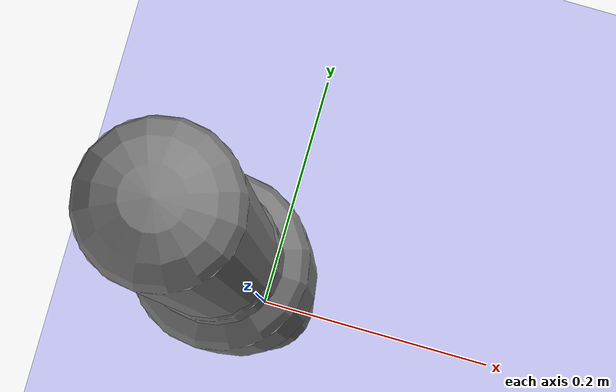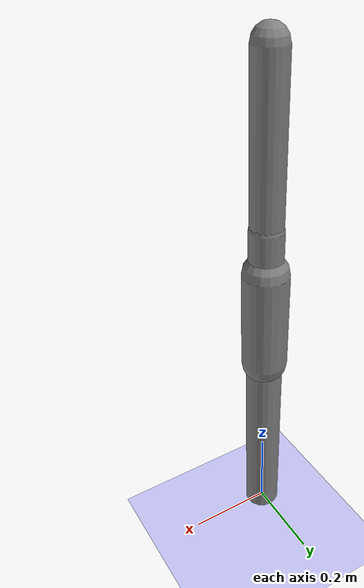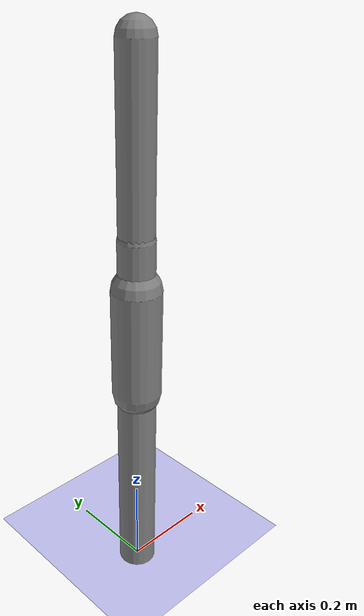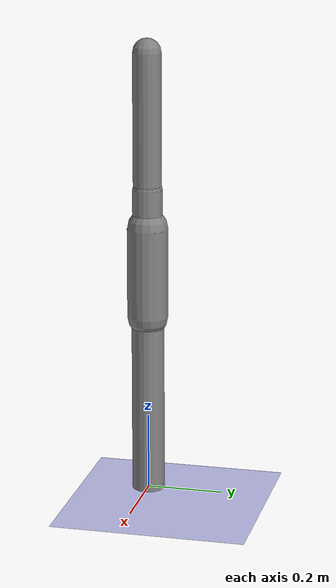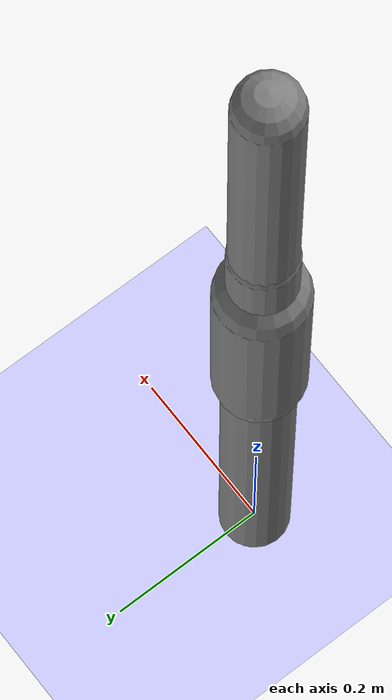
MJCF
<?xml version='1.0' encoding='UTF-8'?>
<mujoco model="robot_model">
  <worldbody>
    <light name="light" pos="0 -3 10" dir="0 0.5 -1" diffuse=".8 .8 .8" specular="0.1 0.1 0.1"/>
    <geom name="floor" type="plane" size="10.0 10.0 0.1" pos="0 0 0" rgba="0.8 0.8 1 1" contype="2" conaffinity="1"/>
    <body name="limb0" pos="0 0 0">
      <geom type="capsule" fromto="0 0 0 0 0 0.5373039636177552" size="0.0426302141580299" density="944.1123055177636" contype="1" conaffinity="2"/>
      <site type="sphere" size="0.01" name="limb0_site0" pos="0 0 0.309974763287745"/>
      <site type="sphere" size="0.01" name="limb0_site1" pos="0 0 0.5059824499294462"/>
      <freejoint name="limb0_root"/>
      <body name="limb1" pos="0 0 0.309974763287745">
        <geom type="capsule" fromto="0 0 0 0 0 0.2639757366326131" size="0.03303782304059255" density="616.6153958948047" contype="1" conaffinity="2"/>
        <site type="sphere" size="0.01" name="limb1_site0" pos="0 0 0.16469519644951955"/>
        <site type="sphere" size="0.01" name="limb1_site1" pos="0 0 0.10105994540977413"/>
        <body name="limb2" pos="0 0 0.16469519644951955">
          <geom type="capsule" fromto="0 0 0 0 0 0.23683402956406574" size="0.053446835651351804" density="643.288328781525" contype="1" conaffinity="2"/>
          <joint name="joint_limb1_limb2_0" type="hinge" axis="0 1 0" range="-79.19027832141104 79.19027832141104" damping="5.0"/>
        </body>
        <body name="limb3" pos="0 0 0.10105994540977413">
          <geom type="capsule" fromto="0 0 0 0 0 0.40476216303504414" size="0.0389533326962269" density="911.3399786459739" contype="1" conaffinity="2"/>
          <site type="sphere" size="0.01" name="limb3_site0" pos="0 0 0.40456032929600577"/>
          <body name="limb4" pos="0 0 0.40456032929600577">
            <geom type="capsule" fromto="0 0 0 0 0 0.3549518955056481" size="0.037166377547990764" density="775.7969601490553" contype="1" conaffinity="2"/>
            <joint name="joint_limb3_limb4_0" type="hinge" axis="0 1 0" range="-97.60316524447805 97.60316524447805" damping="5.0"/>
          </body>
          <joint name="joint_limb1_limb3_0" type="hinge" axis="0 1 0" range="-88.25675619929588 88.25675619929588" damping="5.0"/>
        </body>
        <joint name="joint_limb0_limb1_0" type="hinge" axis="0 1 0" range="-106.52351145579496 106.52351145579496" damping="5.0"/>
      </body>
      <body name="limb5" pos="0 0 0.5059824499294462">
        <geom type="capsule" fromto="0 0 0 0 0 0.12459660118477343" size="0.048030699364997174" density="1200.0" contype="1" conaffinity="2"/>
        <joint name="joint_limb0_limb5_0" type="hinge" axis="0 1 0" range="-46.186401585393725 46.186401585393725" damping="5.0"/>
      </body>
    </body>
  </worldbody>
  <actuator>
    <position name="position_actuator_joint_limb0_limb1_0" joint="joint_limb0_limb1_0" gear="1.103807216489191" inheritrange="1" kp="10.0"/>
    <position name="position_actuator_joint_limb1_limb2_0" joint="joint_limb1_limb2_0" gear="1.0104857860709995" inheritrange="1" kp="10.0"/>
    <position name="position_actuator_joint_limb1_limb3_0" joint="joint_limb1_limb3_0" gear="1.893993715650241" inheritrange="1" kp="10.0"/>
    <position name="position_actuator_joint_limb3_limb4_0" joint="joint_limb3_limb4_0" gear="1.7459471619076385" inheritrange="1" kp="10.0"/>
    <position name="position_actuator_joint_limb0_limb5_0" joint="joint_limb0_limb5_0" gear="0.5181521235082891" inheritrange="1" kp="10.0"/>
  </actuator>
</mujoco>
